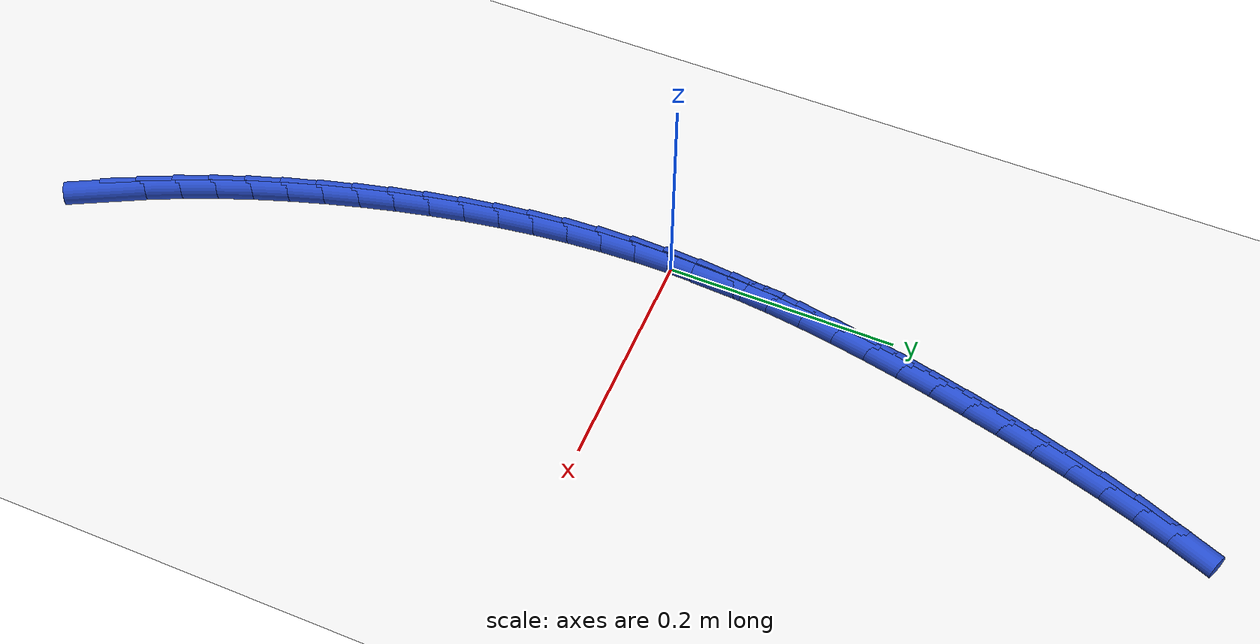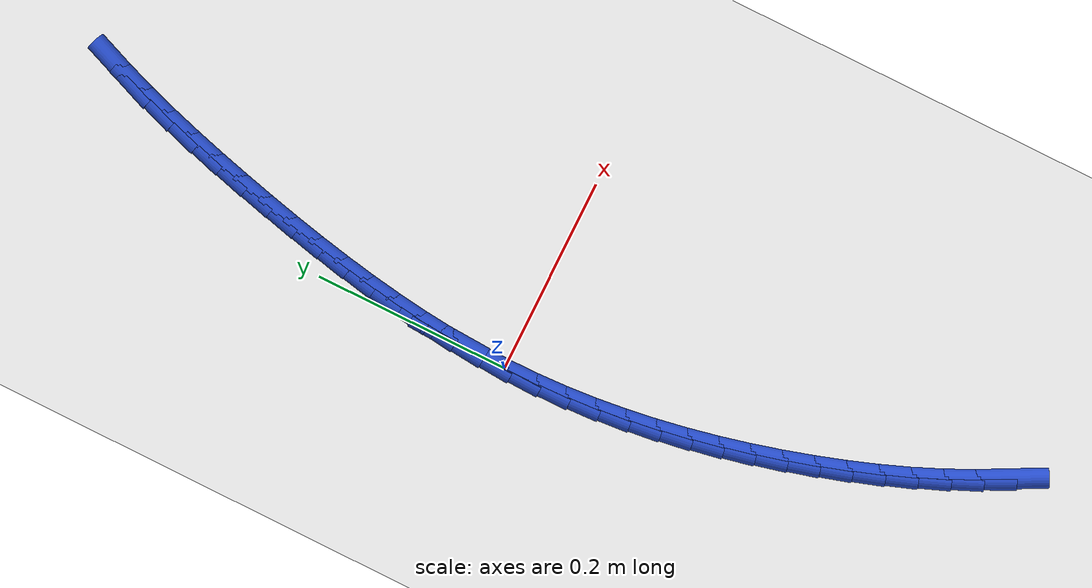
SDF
<sdf version="1.6">
 <world name="default">
  <model name="ground_plane">
   <static>1</static>
   <link name="link">
    <collision name="collision">
     <geometry><plane><normal>0 0 1</normal><size>100 100</size></plane></geometry>
     <surface><friction><ode><mu>100</mu><mu2>50</mu2></ode></friction></surface>
    </collision>
    <visual name="visual">
     <cast_shadows>0</cast_shadows>
     <geometry><plane><normal>0 0 1</normal><size>100 100</size></plane></geometry>
     <material>
      <script><uri>file://media/materials/scripts/gazebo.material</uri><name>Gazebo/WhiteGlow</name></script>
     </material>
    </visual>
   </link>
  </model>
  <model name="line">
   <link name="link_0">
    <pose>1.734723475976807e-18 -4.85722573273506e-17 0.01 0 1.57 1.5412628216631568</pose>
    <collision name="collision">
     <geometry><cylinder><radius>0.01</radius><length>0.08</length></cylinder></geometry>
    </collision>
    <visual name="visual">
     <material>
      <script><name>Gazebo/Blue</name><uri>file://media/materials/scripts/gazebo.material</uri></script>
     </material>
     <geometry><cylinder><radius>0.01</radius><length>0.08</length></cylinder></geometry>
    </visual>
   </link>
   <link name="link_1">
    <pose>0.0009123240648302466 0.030882172428493955 0.01 0 1.57 1.5060534963203114</pose>
    <collision name="collision">
     <geometry><cylinder><radius>0.01</radius><length>0.08</length></cylinder></geometry>
    </collision>
    <visual name="visual">
     <material>
      <script><name>Gazebo/Blue</name><uri>file://media/materials/scripts/gazebo.material</uri></script>
     </material>
     <geometry><cylinder><radius>0.01</radius><length>0.08</length></cylinder></geometry>
    </visual>
   </link>
   <link name="link_2">
    <pose>0.002912517427017815 0.06173343230358804 0.01 0 1.57 1.473726464845135</pose>
    <collision name="collision">
     <geometry><cylinder><radius>0.01</radius><length>0.08</length></cylinder></geometry>
    </collision>
    <visual name="visual">
     <material>
      <script><name>Gazebo/Blue</name><uri>file://media/materials/scripts/gazebo.material</uri></script>
     </material>
     <geometry><cylinder><radius>0.01</radius><length>0.08</length></cylinder></geometry>
    </visual>
   </link>
   <link name="link_3">
    <pose>0.00591393406608708 0.09255642560275042 0.01 0 1.57 1.4443215227421433</pose>
    <collision name="collision">
     <geometry><cylinder><radius>0.01</radius><length>0.08</length></cylinder></geometry>
    </collision>
    <visual name="visual">
     <material>
      <script><name>Gazebo/Blue</name><uri>file://media/materials/scripts/gazebo.material</uri></script>
     </material>
     <geometry><cylinder><radius>0.01</radius><length>0.08</length></cylinder></geometry>
    </visual>
   </link>
   <link name="link_4">
    <pose>0.009829927961562424 0.12335379830344934 0.01 0 1.57 1.4178485512125907</pose>
    <collision name="collision">
     <geometry><cylinder><radius>0.01</radius><length>0.08</length></cylinder></geometry>
    </collision>
    <visual name="visual">
     <material>
      <script><name>Gazebo/Blue</name><uri>file://media/materials/scripts/gazebo.material</uri></script>
     </material>
     <geometry><cylinder><radius>0.01</radius><length>0.08</length></cylinder></geometry>
    </visual>
   </link>
   <link name="link_5">
    <pose>0.014573853092968216 0.15412819638315303 0.01 0 1.57 1.3942950668566918</pose>
    <collision name="collision">
     <geometry><cylinder><radius>0.01</radius><length>0.08</length></cylinder></geometry>
    </collision>
    <visual name="visual">
     <material>
      <script><name>Gazebo/Blue</name><uri>file://media/materials/scripts/gazebo.material</uri></script>
     </material>
     <geometry><cylinder><radius>0.01</radius><length>0.08</length></cylinder></geometry>
    </visual>
   </link>
   <link name="link_6">
    <pose>0.02005906343982885 0.18488226581932984 0.01 0 1.57 1.3736331449066561</pose>
    <collision name="collision">
     <geometry><cylinder><radius>0.01</radius><length>0.08</length></cylinder></geometry>
    </collision>
    <visual name="visual">
     <material>
      <script><name>Gazebo/Blue</name><uri>file://media/materials/scripts/gazebo.material</uri></script>
     </material>
     <geometry><cylinder><radius>0.01</radius><length>0.08</length></cylinder></geometry>
    </visual>
   </link>
   <link name="link_7">
    <pose>0.026198912981668696 0.215618652589448 0.01 0 1.57 1.3558254900949411</pose>
    <collision name="collision">
     <geometry><cylinder><radius>0.01</radius><length>0.08</length></cylinder></geometry>
    </collision>
    <visual name="visual">
     <material>
      <script><name>Gazebo/Blue</name><uri>file://media/materials/scripts/gazebo.material</uri></script>
     </material>
     <geometry><cylinder><radius>0.01</radius><length>0.08</length></cylinder></geometry>
    </visual>
   </link>
   <link name="link_8">
    <pose>0.032906755698012116 0.2463400026709756 0.01 0 1.57 1.3408305674102081</pose>
    <collision name="collision">
     <geometry><cylinder><radius>0.01</radius><length>0.08</length></cylinder></geometry>
    </collision>
    <visual name="visual">
     <material>
      <script><name>Gazebo/Blue</name><uri>file://media/materials/scripts/gazebo.material</uri></script>
     </material>
     <geometry><cylinder><radius>0.01</radius><length>0.08</length></cylinder></geometry>
    </visual>
   </link>
   <link name="link_9">
    <pose>0.0400959455683835 0.2770489620413811 0.01 0 1.57 1.3285257522312957</pose>
    <collision name="collision">
     <geometry><cylinder><radius>0.01</radius><length>0.08</length></cylinder></geometry>
    </collision>
    <visual name="visual">
     <material>
      <script><name>Gazebo/Blue</name><uri>file://media/materials/scripts/gazebo.material</uri></script>
     </material>
     <geometry><cylinder><radius>0.01</radius><length>0.08</length></cylinder></geometry>
    </visual>
   </link>
   <link name="link_10">
    <pose>0.04768220495748689 0.30774707758568953 0.01 0 1.57 1.3161149854434542</pose>
    <collision name="collision">
     <geometry><cylinder><radius>0.01</radius><length>0.08</length></cylinder></geometry>
    </collision>
    <visual name="visual">
     <material>
      <script><name>Gazebo/Blue</name><uri>file://media/materials/scripts/gazebo.material</uri></script>
     </material>
     <geometry><cylinder><radius>0.01</radius><length>0.08</length></cylinder></geometry>
    </visual>
   </link>
   <link name="link_11">
    <pose>0.05566182864192219 0.33839850508809877 0.01 0 1.57 1.3001817370770392</pose>
    <collision name="collision">
     <geometry><cylinder><radius>0.01</radius><length>0.08</length></cylinder></geometry>
    </collision>
    <visual name="visual">
     <material>
      <script><name>Gazebo/Blue</name><uri>file://media/materials/scripts/gazebo.material</uri></script>
     </material>
     <geometry><cylinder><radius>0.01</radius><length>0.08</length></cylinder></geometry>
    </visual>
   </link>
   <link name="link_12">
    <pose>0.06412957279832415 0.3689217075199748 0.01 0 1.57 1.280447265887555</pose>
    <collision name="collision">
     <geometry><cylinder><radius>0.01</radius><length>0.08</length></cylinder></geometry>
    </collision>
    <visual name="visual">
     <material>
      <script><name>Gazebo/Blue</name><uri>file://media/materials/scripts/gazebo.material</uri></script>
     </material>
     <geometry><cylinder><radius>0.01</radius><length>0.08</length></cylinder></geometry>
    </visual>
   </link>
   <link name="link_13">
    <pose>0.07318618493720835 0.39923236746465696 0.01 0 1.57 1.2568132840012687</pose>
    <collision name="collision">
     <geometry><cylinder><radius>0.01</radius><length>0.08</length></cylinder></geometry>
    </collision>
    <visual name="visual">
     <material>
      <script><name>Gazebo/Blue</name><uri>file://media/materials/scripts/gazebo.material</uri></script>
     </material>
     <geometry><cylinder><radius>0.01</radius><length>0.08</length></cylinder></geometry>
    </visual>
   </link>
   <link name="link_14">
    <pose>0.08293241256909038 0.42924616750548544 0.01 0 1.57 1.2291644485362587</pose>
    <collision name="collision">
     <geometry><cylinder><radius>0.01</radius><length>0.08</length></cylinder></geometry>
    </collision>
    <visual name="visual">
     <material>
      <script><name>Gazebo/Blue</name><uri>file://media/materials/scripts/gazebo.material</uri></script>
     </material>
     <geometry><cylinder><radius>0.01</radius><length>0.08</length></cylinder></geometry>
    </visual>
   </link>
   <link name="link_15">
    <pose>0.09346900320448578 0.45887879022580014 0.01 0 1.57 1.1973782347334503</pose>
    <collision name="collision">
     <geometry><cylinder><radius>0.01</radius><length>0.08</length></cylinder></geometry>
    </collision>
    <visual name="visual">
     <material>
      <script><name>Gazebo/Blue</name><uri>file://media/materials/scripts/gazebo.material</uri></script>
     </material>
     <geometry><cylinder><radius>0.01</radius><length>0.08</length></cylinder></geometry>
    </visual>
   </link>
   <link name="link_194">
    <pose>0.12038760747479828 -0.4821645788069808 0.01 0 1.57 -1.0873897504394219</pose>
    <collision name="collision">
     <geometry><cylinder><radius>0.01</radius><length>0.08</length></cylinder></geometry>
    </collision>
    <visual name="visual">
     <material>
      <script><name>Gazebo/Blue</name><uri>file://media/materials/scripts/gazebo.material</uri></script>
     </material>
     <geometry><cylinder><radius>0.01</radius><length>0.08</length></cylinder></geometry>
    </visual>
   </link>
   <link name="link_195">
    <pose>0.10588146213995982 -0.4545311115861228 0.01 0 1.57 -1.1283756418051343</pose>
    <collision name="collision">
     <geometry><cylinder><radius>0.01</radius><length>0.08</length></cylinder></geometry>
    </collision>
    <visual name="visual">
     <material>
      <script><name>Gazebo/Blue</name><uri>file://media/materials/scripts/gazebo.material</uri></script>
     </material>
     <geometry><cylinder><radius>0.01</radius><length>0.08</length></cylinder></geometry>
    </visual>
   </link>
   <link name="link_196">
    <pose>0.09244528350929701 -0.4261692517747319 0.01 0 1.57 -1.1658885423580319</pose>
    <collision name="collision">
     <geometry><cylinder><radius>0.01</radius><length>0.08</length></cylinder></geometry>
    </collision>
    <visual name="visual">
     <material>
      <script><name>Gazebo/Blue</name><uri>file://media/materials/scripts/gazebo.material</uri></script>
     </material>
     <geometry><cylinder><radius>0.01</radius><length>0.08</length></cylinder></geometry>
    </visual>
   </link>
   <link name="link_197">
    <pose>0.0800237872821321 -0.3971870411765388 0.01 0 1.57 -1.2001404533705096</pose>
    <collision name="collision">
     <geometry><cylinder><radius>0.01</radius><length>0.08</length></cylinder></geometry>
    </collision>
    <visual name="visual">
     <material>
      <script><name>Gazebo/Blue</name><uri>file://media/materials/scripts/gazebo.material</uri></script>
     </material>
     <geometry><cylinder><radius>0.01</radius><length>0.08</length></cylinder></geometry>
    </visual>
   </link>
   <link name="link_198">
    <pose>0.06856168915778636 -0.3676925215952717 0.01 0 1.57 -1.231340996326227</pose>
    <collision name="collision">
     <geometry><cylinder><radius>0.01</radius><length>0.08</length></cylinder></geometry>
    </collision>
    <visual name="visual">
     <material>
      <script><name>Gazebo/Blue</name><uri>file://media/materials/scripts/gazebo.material</uri></script>
     </material>
     <geometry><cylinder><radius>0.01</radius><length>0.08</length></cylinder></geometry>
    </visual>
   </link>
   <link name="link_199">
    <pose>0.058003704835581454 -0.33779373483466013 0.01 0 1.57 -1.2596895329847762</pose>
    <collision name="collision">
     <geometry><cylinder><radius>0.01</radius><length>0.08</length></cylinder></geometry>
    </collision>
    <visual name="visual">
     <material>
      <script><name>Gazebo/Blue</name><uri>file://media/materials/scripts/gazebo.material</uri></script>
     </material>
     <geometry><cylinder><radius>0.01</radius><length>0.08</length></cylinder></geometry>
    </visual>
   </link>
   <link name="link_200">
    <pose>0.04829455001483904 -0.30759872269843325 0.01 0 1.57 -1.285489721112182</pose>
    <collision name="collision">
     <geometry><cylinder><radius>0.01</radius><length>0.08</length></cylinder></geometry>
    </collision>
    <visual name="visual">
     <material>
      <script><name>Gazebo/Blue</name><uri>file://media/materials/scripts/gazebo.material</uri></script>
     </material>
     <geometry><cylinder><radius>0.01</radius><length>0.08</length></cylinder></geometry>
    </visual>
   </link>
   <link name="link_201">
    <pose>0.039382057931808316 -0.27721266029904507 0.01 0 1.57 -1.3108563598551204</pose>
    <collision name="collision">
     <geometry><cylinder><radius>0.01</radius><length>0.08</length></cylinder></geometry>
    </collision>
    <visual name="visual">
     <material>
      <script><name>Gazebo/Blue</name><uri>file://media/materials/scripts/gazebo.material</uri></script>
     </material>
     <geometry><cylinder><radius>0.01</radius><length>0.08</length></cylinder></geometry>
    </visual>
   </link>
   <link name="link_202">
    <pose>0.03126529533044339 -0.24669361163111853 0.01 0 1.57 -1.3374676731717265</pose>
    <collision name="collision">
     <geometry><cylinder><radius>0.01</radius><length>0.08</length></cylinder></geometry>
    </collision>
    <visual name="visual">
     <material>
      <script><name>Gazebo/Blue</name><uri>file://media/materials/scripts/gazebo.material</uri></script>
     </material>
     <geometry><cylinder><radius>0.01</radius><length>0.08</length></cylinder></geometry>
    </visual>
   </link>
   <link name="link_203">
    <pose>0.02398525408763666 -0.2160610889686113 0.01 0 1.57 -1.3654162632694689</pose>
    <collision name="collision">
     <geometry><cylinder><radius>0.01</radius><length>0.08</length></cylinder></geometry>
    </collision>
    <visual name="visual">
     <material>
      <script><name>Gazebo/Blue</name><uri>file://media/materials/scripts/gazebo.material</uri></script>
     </material>
     <geometry><cylinder><radius>0.01</radius><length>0.08</length></cylinder></geometry>
    </visual>
   </link>
   <link name="link_204">
    <pose>0.017584158448297277 -0.1853334713772037 0.01 0 1.57 -1.3947434222811947</pose>
    <collision name="collision">
     <geometry><cylinder><radius>0.01</radius><length>0.08</length></cylinder></geometry>
    </collision>
    <visual name="visual">
     <material>
      <script><name>Gazebo/Blue</name><uri>file://media/materials/scripts/gazebo.material</uri></script>
     </material>
     <geometry><cylinder><radius>0.01</radius><length>0.08</length></cylinder></geometry>
    </visual>
   </link>
   <link name="link_205">
    <pose>0.012104232657334603 -0.154529137922577 0.01 0 1.57 -1.4254849404262324</pose>
    <collision name="collision">
     <geometry><cylinder><radius>0.01</radius><length>0.08</length></cylinder></geometry>
    </collision>
    <visual name="visual">
     <material>
      <script><name>Gazebo/Blue</name><uri>file://media/materials/scripts/gazebo.material</uri></script>
     </material>
     <geometry><cylinder><radius>0.01</radius><length>0.08</length></cylinder></geometry>
    </visual>
   </link>
   <link name="link_206">
    <pose>0.00758770095965803 -0.12366646767041249 0.01 0 1.57 -1.4576692708676375</pose>
    <collision name="collision">
     <geometry><cylinder><radius>0.01</radius><length>0.08</length></cylinder></geometry>
    </collision>
    <visual name="visual">
     <material>
      <script><name>Gazebo/Blue</name><uri>file://media/materials/scripts/gazebo.material</uri></script>
     </material>
     <geometry><cylinder><radius>0.01</radius><length>0.08</length></cylinder></geometry>
    </visual>
   </link>
   <link name="link_207">
    <pose>0.00407678760017691 -0.09276383968639135 0.01 0 1.57 -1.4913154836907037</pose>
    <collision name="collision">
     <geometry><cylinder><radius>0.01</radius><length>0.08</length></cylinder></geometry>
    </collision>
    <visual name="visual">
     <material>
      <script><name>Gazebo/Blue</name><uri>file://media/materials/scripts/gazebo.material</uri></script>
     </material>
     <geometry><cylinder><radius>0.01</radius><length>0.08</length></cylinder></geometry>
    </visual>
   </link>
   <link name="link_208">
    <pose>0.0016137168238006183 -0.0618396330361947 0.01 0 1.57 -1.526431047624893</pose>
    <collision name="collision">
     <geometry><cylinder><radius>0.01</radius><length>0.08</length></cylinder></geometry>
    </collision>
    <visual name="visual">
     <material>
      <script><name>Gazebo/Blue</name><uri>file://media/materials/scripts/gazebo.material</uri></script>
     </material>
     <geometry><cylinder><radius>0.01</radius><length>0.08</length></cylinder></geometry>
    </visual>
   </link>
   <link name="link_209">
    <pose>0.00024071287543850003 -0.030912226785503115 0.01 0 1.57 -1.5630095047094827</pose>
    <collision name="collision">
     <geometry><cylinder><radius>0.01</radius><length>0.08</length></cylinder></geometry>
    </collision>
    <visual name="visual">
     <material>
      <script><name>Gazebo/Blue</name><uri>file://media/materials/scripts/gazebo.material</uri></script>
     </material>
     <geometry><cylinder><radius>0.01</radius><length>0.08</length></cylinder></geometry>
    </visual>
   </link>
   <link name="link_210">
    <pose>-6.938893903907228e-18 3.469446951953614e-17 0.01 0 1.57 1.5405645198185118</pose>
    <collision name="collision">
     <geometry><cylinder><radius>0.01</radius><length>0.08</length></cylinder></geometry>
    </collision>
    <visual name="visual">
     <material>
      <script><name>Gazebo/Blue</name><uri>file://media/materials/scripts/gazebo.material</uri></script>
     </material>
     <geometry><cylinder><radius>0.01</radius><length>0.08</length></cylinder></geometry>
    </visual>
   </link>
   <link name="link_211">
    <pose>0.0009338024423943981 0.03087866825463568 0.01 0 1.57 1.501146922546794</pose>
    <collision name="collision">
     <geometry><cylinder><radius>0.01</radius><length>0.08</length></cylinder></geometry>
    </collision>
    <visual name="visual">
     <material>
      <script><name>Gazebo/Blue</name><uri>file://media/materials/scripts/gazebo.material</uri></script>
     </material>
     <geometry><cylinder><radius>0.01</radius><length>0.08</length></cylinder></geometry>
    </visual>
   </link>
   <link name="link_212">
    <pose>0.0030843444475312388 0.06170539891272333 0.01 0 1.57 1.5208528923378741</pose>
    <collision name="collision">
     <geometry><cylinder><radius>0.01</radius><length>0.08</length></cylinder></geometry>
    </collision>
    <visual name="visual">
     <material>
      <script><name>Gazebo/Blue</name><uri>file://media/materials/scripts/gazebo.material</uri></script>
     </material>
     <geometry><cylinder><radius>0.01</radius><length>0.08</length></cylinder></geometry>
    </visual>
   </link>
  </model>
 </world>
</sdf>
